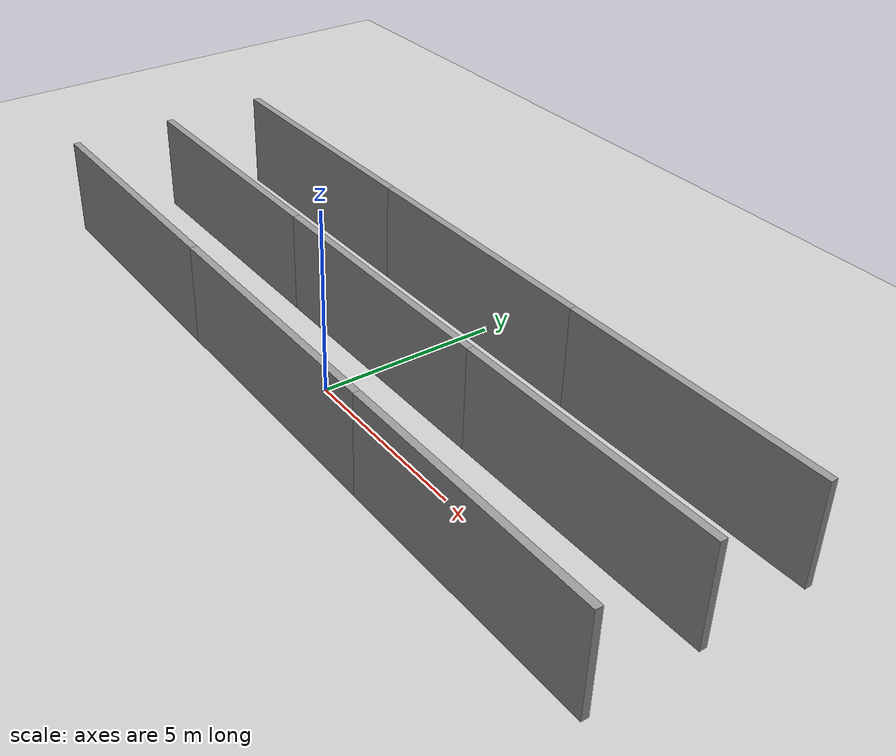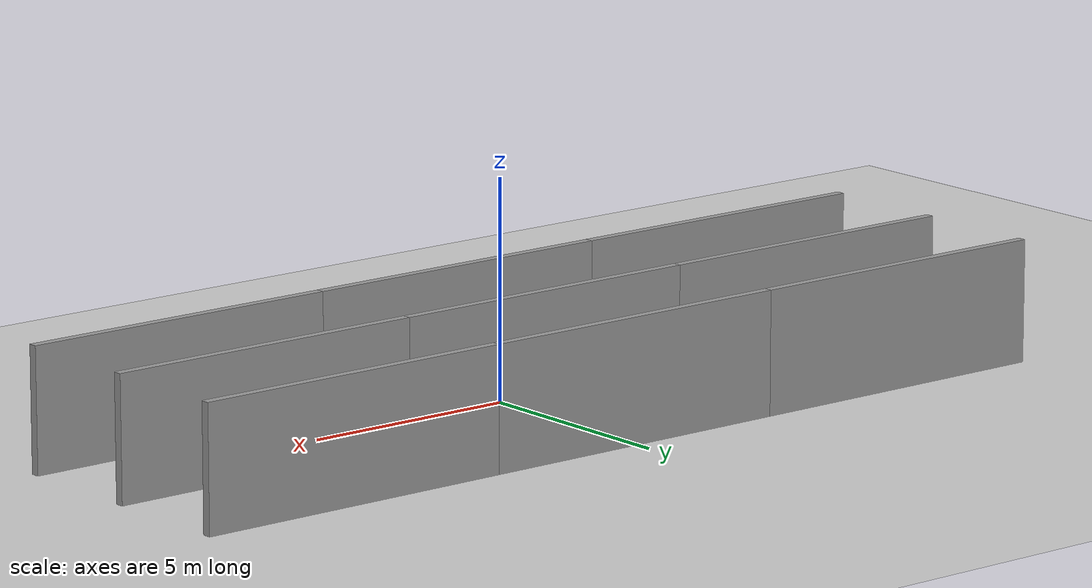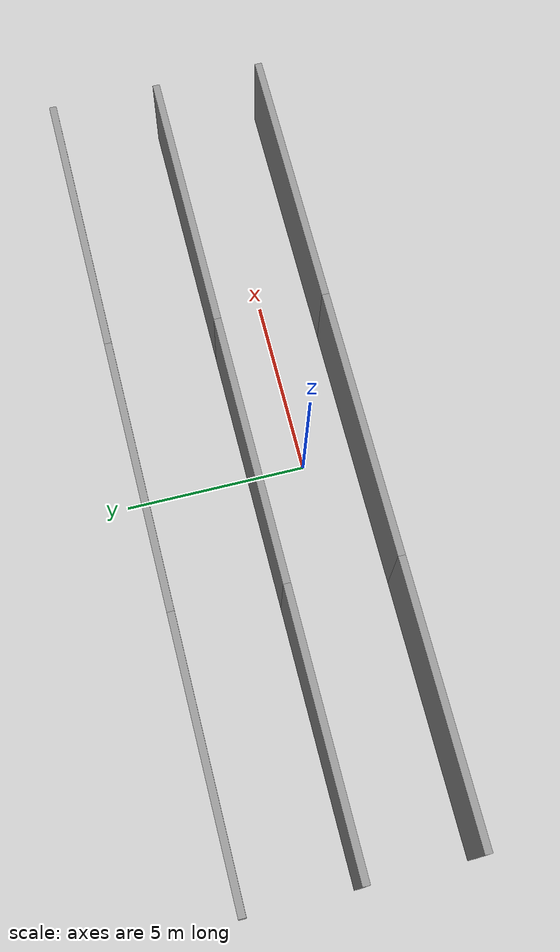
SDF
<sdf version="1.6">
 <world name="default">
  <model name="ground_plane">
   <static>1</static>
   <link name="link">
    <collision name="collision">
     <geometry><plane><normal>0 0 1</normal><size>100 100</size></plane></geometry>
     <surface><friction><ode><mu>100</mu><mu2>50</mu2></ode></friction></surface>
    </collision>
    <visual name="visual">
     <cast_shadows>0</cast_shadows>
     <geometry><plane><normal>0 0 1</normal><size>100 100</size></plane></geometry>
     <material>
      <script><uri>file://media/materials/scripts/gazebo.material</uri><name>Gazebo/Grey</name></script>
     </material>
    </visual>
   </link>
  </model>
  <light name="sun" type="directional">
   <pose>0 0 10 0 -0 0</pose>
   <diffuse>0.8 0.8 0.8 1</diffuse>
   <specular>0.1 0.1 0.1 1</specular>
   <attenuation>
    <range>1000</range>
    <constant>0.9</constant>
    <linear>0.01</linear>
    <quadratic>0.001</quadratic>
   </attenuation>
   <direction>-0.5 0.5 -1</direction>
  </light>
  <physics name="default_physics" default="0" type="ode">
   <ode>
    <solver>
     <type>quick</type>
     <iters>1000</iters>
     <sor>1.3</sor>
     <use_dynamic_moi_rescaling>0</use_dynamic_moi_rescaling>
    </solver>
    <constraints>
     <cfm>0</cfm>
     <erp>0.2</erp>
     <contact_max_correcting_vel>100</contact_max_correcting_vel>
     <contact_surface_layer>0.001</contact_surface_layer>
    </constraints>
   </ode>
   <max_step_size>0.01</max_step_size>
   <real_time_factor>1</real_time_factor>
   <real_time_update_rate>100</real_time_update_rate>
  </physics>
  <gravity>0 0 -9.8</gravity>
  <magnetic_field>6e-06 2.3e-05 -4.2e-05</magnetic_field>
  <atmosphere type="adiabatic"/>
  <scene><ambient>0.4 0.4 0.4 1</ambient><background>0.7 0.7 0.7 1</background><shadows>1</shadows></scene>
  <spherical_coordinates>
   <surface_model>EARTH_WGS84</surface_model>
   <latitude_deg>0</latitude_deg>
   <longitude_deg>0</longitude_deg>
   <elevation>0</elevation>
   <heading_deg>0</heading_deg>
  </spherical_coordinates>
  <audio><device>default</device></audio>
  <model name="grey_wall_middle_middle">
   <static>1</static>
   <link name="link">
    <pose>0 0 1.4 0 -0 0</pose>
    <collision name="collision"><geometry><box><size>7.5 0.2 2.8</size></box></geometry></collision>
    <visual name="visual">
     <cast_shadows>0</cast_shadows>
     <geometry><box><size>7.5 0.2 2.8</size></box></geometry>
     <material>
      <script>
       <uri>model://grey_wall/materials/scripts</uri>
       <uri>model://grey_wall/materials/textures</uri>
       <name>vrc/grey_wall</name>
      </script>
     </material>
    </visual>
   </link>
   <pose>0 1.5 0 0 -0 0</pose>
  </model>
  <model name="grey_wall_right_middle">
   <static>1</static>
   <link name="link">
    <pose>0 0 1.4 0 -0 0</pose>
    <collision name="collision"><geometry><box><size>7.5 0.2 2.8</size></box></geometry></collision>
    <visual name="visual">
     <cast_shadows>0</cast_shadows>
     <geometry><box><size>7.5 0.2 2.8</size></box></geometry>
     <material>
      <script>
       <uri>model://grey_wall/materials/scripts</uri>
       <uri>model://grey_wall/materials/textures</uri>
       <name>vrc/grey_wall</name>
      </script>
     </material>
    </visual>
   </link>
   <pose>0 -1.5 0 0 -0 0</pose>
  </model>
  <model name="grey_wall_middle_back">
   <static>1</static>
   <link name="link">
    <pose>0 0 1.4 0 -0 0</pose>
    <collision name="collision"><geometry><box><size>7.5 0.2 2.8</size></box></geometry></collision>
    <visual name="visual">
     <cast_shadows>0</cast_shadows>
     <geometry><box><size>7.5 0.2 2.8</size></box></geometry>
     <material>
      <script>
       <uri>model://grey_wall/materials/scripts</uri>
       <uri>model://grey_wall/materials/textures</uri>
       <name>vrc/grey_wall</name>
      </script>
     </material>
    </visual>
   </link>
   <pose>-7.5 1.5 0 0 -0 0</pose>
  </model>
  <model name="grey_wall_right_back">
   <static>1</static>
   <link name="link">
    <pose>0 0 1.4 0 -0 0</pose>
    <collision name="collision"><geometry><box><size>7.5 0.2 2.8</size></box></geometry></collision>
    <visual name="visual">
     <cast_shadows>0</cast_shadows>
     <geometry><box><size>7.5 0.2 2.8</size></box></geometry>
     <material>
      <script>
       <uri>model://grey_wall/materials/scripts</uri>
       <uri>model://grey_wall/materials/textures</uri>
       <name>vrc/grey_wall</name>
      </script>
     </material>
    </visual>
   </link>
   <pose>-7.5 -1.5 0 0 -0 0</pose>
  </model>
  <model name="grey_wall_right_front">
   <static>1</static>
   <link name="link">
    <pose>0 0 1.4 0 -0 0</pose>
    <collision name="collision"><geometry><box><size>7.5 0.2 2.8</size></box></geometry></collision>
    <visual name="visual">
     <cast_shadows>0</cast_shadows>
     <geometry><box><size>7.5 0.2 2.8</size></box></geometry>
     <material>
      <script>
       <uri>model://grey_wall/materials/scripts</uri>
       <uri>model://grey_wall/materials/textures</uri>
       <name>vrc/grey_wall</name>
      </script>
     </material>
    </visual>
   </link>
   <pose>7.5 -1.5 0 0 -0 0</pose>
  </model>
  <model name="grey_wall_middle_front">
   <static>1</static>
   <link name="link">
    <pose>0 0 1.4 0 -0 0</pose>
    <collision name="collision"><geometry><box><size>7.5 0.2 2.8</size></box></geometry></collision>
    <visual name="visual">
     <cast_shadows>0</cast_shadows>
     <geometry><box><size>7.5 0.2 2.8</size></box></geometry>
     <material>
      <script>
       <uri>model://grey_wall/materials/scripts</uri>
       <uri>model://grey_wall/materials/textures</uri>
       <name>vrc/grey_wall</name>
      </script>
     </material>
    </visual>
   </link>
   <pose>7.5 1.5 0 0 -0 0</pose>
  </model>
  <model name="grey_wall_left_front">
   <static>1</static>
   <link name="link">
    <pose>0 0 1.4 0 -0 0</pose>
    <collision name="collision"><geometry><box><size>7.5 0.2 2.8</size></box></geometry></collision>
    <visual name="visual">
     <cast_shadows>0</cast_shadows>
     <geometry><box><size>7.5 0.2 2.8</size></box></geometry>
     <material>
      <script>
       <uri>model://grey_wall/materials/scripts</uri>
       <uri>model://grey_wall/materials/textures</uri>
       <name>vrc/grey_wall</name>
      </script>
     </material>
    </visual>
   </link>
   <pose>7.5 4.5 0 0 -0 0</pose>
  </model>
  <model name="grey_wall_left_middle">
   <static>1</static>
   <link name="link">
    <pose>0 0 1.4 0 -0 0</pose>
    <collision name="collision"><geometry><box><size>7.5 0.2 2.8</size></box></geometry></collision>
    <visual name="visual">
     <cast_shadows>0</cast_shadows>
     <geometry><box><size>7.5 0.2 2.8</size></box></geometry>
     <material>
      <script>
       <uri>model://grey_wall/materials/scripts</uri>
       <uri>model://grey_wall/materials/textures</uri>
       <name>vrc/grey_wall</name>
      </script>
     </material>
    </visual>
   </link>
   <pose>0 4.5 0 0 -0 0</pose>
  </model>
  <model name="grey_wall_left_back">
   <static>1</static>
   <link name="link">
    <pose>0 0 1.4 0 -0 0</pose>
    <collision name="collision"><geometry><box><size>7.5 0.2 2.8</size></box></geometry></collision>
    <visual name="visual">
     <cast_shadows>0</cast_shadows>
     <geometry><box><size>7.5 0.2 2.8</size></box></geometry>
     <material>
      <script>
       <uri>model://grey_wall/materials/scripts</uri>
       <uri>model://grey_wall/materials/textures</uri>
       <name>vrc/grey_wall</name>
      </script>
     </material>
    </visual>
   </link>
   <pose>-7.5 4.5 0 0 -0 0</pose>
  </model>
 </world>
</sdf>
